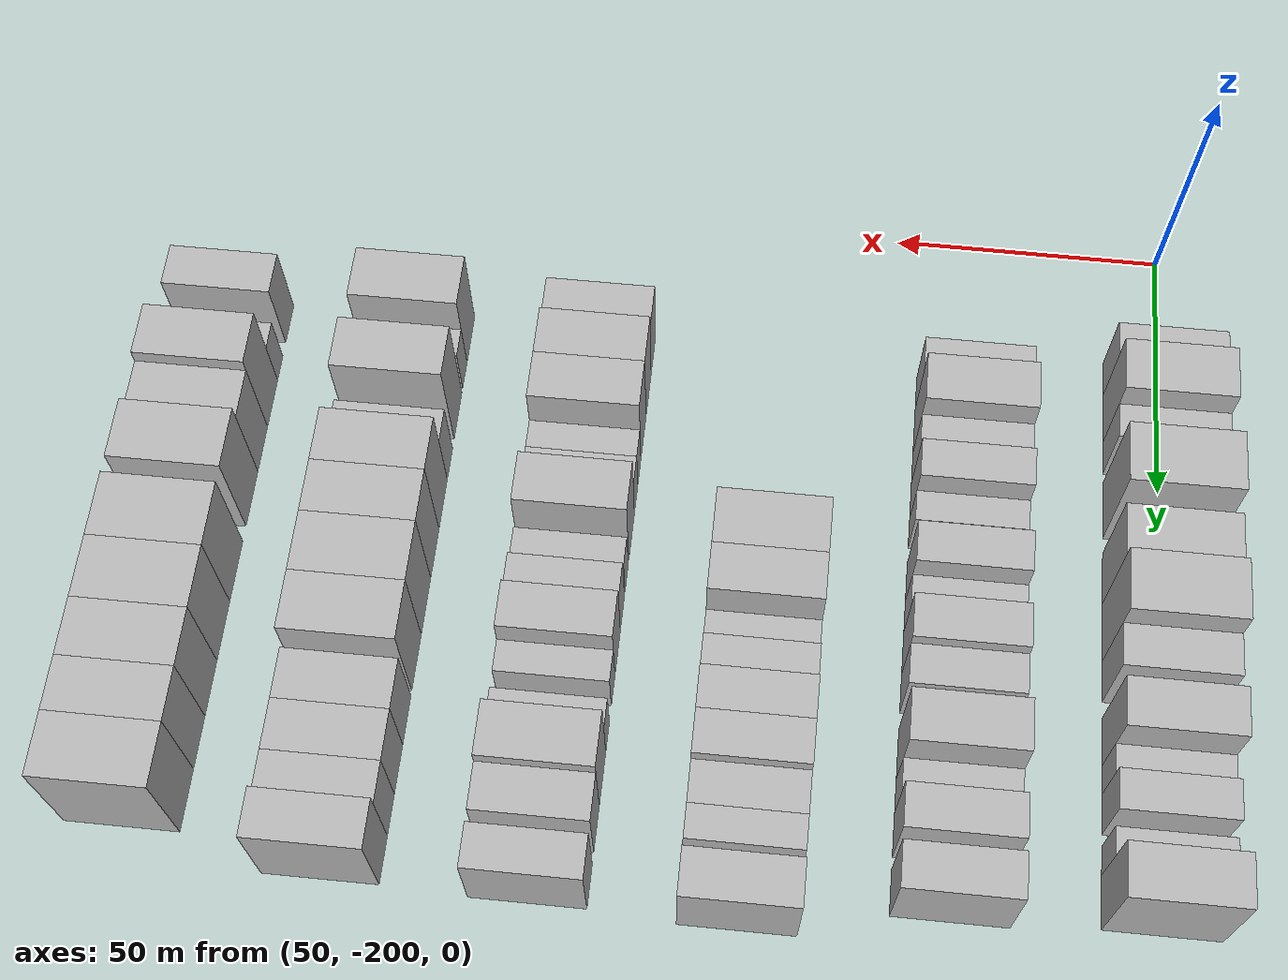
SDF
<sdf version="1.6">
 <world name="default">
  <model name="building_45">
   <static>1</static>
   <pose>50.0000 -173.1344 0 0.000000 0.000000 0.000000</pose>
   <link name="link">
    <pose>0 0 7.50 0 0 0</pose>
    <collision name="collision"><geometry><box><size>20.0000 6.9827 15.0000</size></box></geometry></collision>
    <visual name="visual">
     <cast_shadows>0</cast_shadows>
     <geometry><box><size>20.0000 6.9827 15.0000</size></box></geometry>
     <material>
      <script>
       <uri>model://HANNAS_wall/materials/scripts</uri>
       <uri>model://HANNAS_wall/materials/textures</uri>
       <name>vrc/HANNAS_wall</name>
      </script>
     </material>
    </visual>
   </link>
  </model>
  <model name="building_46">
   <static>1</static>
   <pose>50.0000 -164.6204 0 0.000000 0.000000 0.000000</pose>
   <link name="link">
    <pose>0 0 10.50 0 0 0</pose>
    <collision name="collision"><geometry><box><size>20.0000 10.0453 21.0000</size></box></geometry></collision>
    <visual name="visual">
     <cast_shadows>0</cast_shadows>
     <geometry><box><size>20.0000 10.0453 21.0000</size></box></geometry>
     <material>
      <script>
       <uri>model://HANNAS_wall/materials/scripts</uri>
       <uri>model://HANNAS_wall/materials/textures</uri>
       <name>vrc/HANNAS_wall</name>
      </script>
     </material>
    </visual>
   </link>
  </model>
  <model name="building_47">
   <static>1</static>
   <pose>50.0000 -156.3387 0 0.000000 0.000000 0.000000</pose>
   <link name="link">
    <pose>0 0 7.50 0 0 0</pose>
    <collision name="collision"><geometry><box><size>20.0000 6.5181 15.0000</size></box></geometry></collision>
    <visual name="visual">
     <cast_shadows>0</cast_shadows>
     <geometry><box><size>20.0000 6.5181 15.0000</size></box></geometry>
     <material>
      <script>
       <uri>model://HANNAS_wall/materials/scripts</uri>
       <uri>model://HANNAS_wall/materials/textures</uri>
       <name>vrc/HANNAS_wall</name>
      </script>
     </material>
    </visual>
   </link>
  </model>
  <model name="building_48">
   <static>1</static>
   <pose>50.0000 -145.4453 0 0.000000 0.000000 0.000000</pose>
   <link name="link">
    <pose>0 0 12.00 0 0 0</pose>
    <collision name="collision"><geometry><box><size>20.0000 11.2687 24.0000</size></box></geometry></collision>
    <visual name="visual">
     <cast_shadows>0</cast_shadows>
     <geometry><box><size>20.0000 11.2687 24.0000</size></box></geometry>
     <material>
      <script>
       <uri>model://HANNAS_wall/materials/scripts</uri>
       <uri>model://HANNAS_wall/materials/textures</uri>
       <name>vrc/HANNAS_wall</name>
      </script>
     </material>
    </visual>
   </link>
  </model>
  <model name="building_49">
   <static>1</static>
   <pose>50.0000 -131.9042 0 0.000000 0.000000 0.000000</pose>
   <link name="link">
    <pose>0 0 10.50 0 0 0</pose>
    <collision name="collision"><geometry><box><size>20.0000 9.8134 21.0000</size></box></geometry></collision>
    <visual name="visual">
     <cast_shadows>0</cast_shadows>
     <geometry><box><size>20.0000 9.8134 21.0000</size></box></geometry>
     <material>
      <script>
       <uri>model://HANNAS_wall/materials/scripts</uri>
       <uri>model://HANNAS_wall/materials/textures</uri>
       <name>vrc/HANNAS_wall</name>
      </script>
     </material>
    </visual>
   </link>
  </model>
  <model name="building_50">
   <static>1</static>
   <pose>50.0000 -121.4116 0 0.000000 0.000000 0.000000</pose>
   <link name="link">
    <pose>0 0 12.00 0 0 0</pose>
    <collision name="collision"><geometry><box><size>20.0000 11.1718 24.0000</size></box></geometry></collision>
    <visual name="visual">
     <cast_shadows>0</cast_shadows>
     <geometry><box><size>20.0000 11.1718 24.0000</size></box></geometry>
     <material>
      <script>
       <uri>model://HANNAS_wall/materials/scripts</uri>
       <uri>model://HANNAS_wall/materials/textures</uri>
       <name>vrc/HANNAS_wall</name>
      </script>
     </material>
    </visual>
   </link>
  </model>
  <model name="building_51">
   <static>1</static>
   <pose>50.0000 -112.0180 0 0.000000 0.000000 0.000000</pose>
   <link name="link">
    <pose>0 0 9.00 0 0 0</pose>
    <collision name="collision"><geometry><box><size>20.0000 7.6156 18.0000</size></box></geometry></collision>
    <visual name="visual">
     <cast_shadows>0</cast_shadows>
     <geometry><box><size>20.0000 7.6156 18.0000</size></box></geometry>
     <material>
      <script>
       <uri>model://HANNAS_wall/materials/scripts</uri>
       <uri>model://HANNAS_wall/materials/textures</uri>
       <name>vrc/HANNAS_wall</name>
      </script>
     </material>
    </visual>
   </link>
  </model>
  <model name="building_52">
   <static>1</static>
   <pose>50.0000 -100.8558 0 0.000000 0.000000 0.000000</pose>
   <link name="link">
    <pose>0 0 10.50 0 0 0</pose>
    <collision name="collision"><geometry><box><size>20.0000 8.7089 21.0000</size></box></geometry></collision>
    <visual name="visual">
     <cast_shadows>0</cast_shadows>
     <geometry><box><size>20.0000 8.7089 21.0000</size></box></geometry>
     <material>
      <script>
       <uri>model://HANNAS_wall/materials/scripts</uri>
       <uri>model://HANNAS_wall/materials/textures</uri>
       <name>vrc/HANNAS_wall</name>
      </script>
     </material>
    </visual>
   </link>
  </model>
  <model name="building_53">
   <static>1</static>
   <pose>50.0000 -93.9283 0 0.000000 0.000000 0.000000</pose>
   <link name="link">
    <pose>0 0 6.00 0 0 0</pose>
    <collision name="collision"><geometry><box><size>20.0000 5.1461 12.0000</size></box></geometry></collision>
    <visual name="visual">
     <cast_shadows>0</cast_shadows>
     <geometry><box><size>20.0000 5.1461 12.0000</size></box></geometry>
     <material>
      <script>
       <uri>model://HANNAS_wall/materials/scripts</uri>
       <uri>model://HANNAS_wall/materials/textures</uri>
       <name>vrc/HANNAS_wall</name>
      </script>
     </material>
    </visual>
   </link>
  </model>
  <model name="building_54">
   <static>1</static>
   <pose>50.0000 -87.8280 0 0.000000 0.000000 0.000000</pose>
   <link name="link">
    <pose>0 0 7.50 0 0 0</pose>
    <collision name="collision"><geometry><box><size>20.0000 7.0544 15.0000</size></box></geometry></collision>
    <visual name="visual">
     <cast_shadows>0</cast_shadows>
     <geometry><box><size>20.0000 7.0544 15.0000</size></box></geometry>
     <material>
      <script>
       <uri>model://HANNAS_wall/materials/scripts</uri>
       <uri>model://HANNAS_wall/materials/textures</uri>
       <name>vrc/HANNAS_wall</name>
      </script>
     </material>
    </visual>
   </link>
  </model>
  <model name="building_55">
   <static>1</static>
   <pose>50.0000 -79.8011 0 0.000000 0.000000 0.000000</pose>
   <link name="link">
    <pose>0 0 6.00 0 0 0</pose>
    <collision name="collision"><geometry><box><size>20.0000 4.9994 12.0000</size></box></geometry></collision>
    <visual name="visual">
     <cast_shadows>0</cast_shadows>
     <geometry><box><size>20.0000 4.9994 12.0000</size></box></geometry>
     <material>
      <script>
       <uri>model://HANNAS_wall/materials/scripts</uri>
       <uri>model://HANNAS_wall/materials/textures</uri>
       <name>vrc/HANNAS_wall</name>
      </script>
     </material>
    </visual>
   </link>
  </model>
  <model name="building_56">
   <static>1</static>
   <pose>50.0000 -72.6937 0 0.000000 0.000000 0.000000</pose>
   <link name="link">
    <pose>0 0 10.50 0 0 0</pose>
    <collision name="collision"><geometry><box><size>20.0000 9.2154 21.0000</size></box></geometry></collision>
    <visual name="visual">
     <cast_shadows>0</cast_shadows>
     <geometry><box><size>20.0000 9.2154 21.0000</size></box></geometry>
     <material>
      <script>
       <uri>model://HANNAS_wall/materials/scripts</uri>
       <uri>model://HANNAS_wall/materials/textures</uri>
       <name>vrc/HANNAS_wall</name>
      </script>
     </material>
    </visual>
   </link>
  </model>
  <model name="building_175">
   <static>1</static>
   <pose>85.0000 -166.5750 0 0.000000 0.000000 0.000000</pose>
   <link name="link">
    <pose>0 0 7.50 0 0 0</pose>
    <collision name="collision"><geometry><box><size>20.0000 6.8497 15.0000</size></box></geometry></collision>
    <visual name="visual">
     <cast_shadows>0</cast_shadows>
     <geometry><box><size>20.0000 6.8497 15.0000</size></box></geometry>
     <material>
      <script>
       <uri>model://HANNAS_wall/materials/scripts</uri>
       <uri>model://HANNAS_wall/materials/textures</uri>
       <name>vrc/HANNAS_wall</name>
      </script>
     </material>
    </visual>
   </link>
  </model>
  <model name="building_176">
   <static>1</static>
   <pose>85.0000 -158.5367 0 0.000000 0.000000 0.000000</pose>
   <link name="link">
    <pose>0 0 10.50 0 0 0</pose>
    <collision name="collision"><geometry><box><size>20.0000 9.2269 21.0000</size></box></geometry></collision>
    <visual name="visual">
     <cast_shadows>0</cast_shadows>
     <geometry><box><size>20.0000 9.2269 21.0000</size></box></geometry>
     <material>
      <script>
       <uri>model://HANNAS_wall/materials/scripts</uri>
       <uri>model://HANNAS_wall/materials/textures</uri>
       <name>vrc/HANNAS_wall</name>
      </script>
     </material>
    </visual>
   </link>
  </model>
  <model name="building_177">
   <static>1</static>
   <pose>85.0000 -150.6864 0 0.000000 0.000000 0.000000</pose>
   <link name="link">
    <pose>0 0 7.50 0 0 0</pose>
    <collision name="collision"><geometry><box><size>20.0000 6.4737 15.0000</size></box></geometry></collision>
    <visual name="visual">
     <cast_shadows>0</cast_shadows>
     <geometry><box><size>20.0000 6.4737 15.0000</size></box></geometry>
     <material>
      <script>
       <uri>model://HANNAS_wall/materials/scripts</uri>
       <uri>model://HANNAS_wall/materials/textures</uri>
       <name>vrc/HANNAS_wall</name>
      </script>
     </material>
    </visual>
   </link>
  </model>
  <model name="building_178">
   <static>1</static>
   <pose>85.0000 -143.8188 0 0.000000 0.000000 0.000000</pose>
   <link name="link">
    <pose>0 0 9.00 0 0 0</pose>
    <collision name="collision"><geometry><box><size>20.0000 7.2614 18.0000</size></box></geometry></collision>
    <visual name="visual">
     <cast_shadows>0</cast_shadows>
     <geometry><box><size>20.0000 7.2614 18.0000</size></box></geometry>
     <material>
      <script>
       <uri>model://HANNAS_wall/materials/scripts</uri>
       <uri>model://HANNAS_wall/materials/textures</uri>
       <name>vrc/HANNAS_wall</name>
      </script>
     </material>
    </visual>
   </link>
  </model>
  <model name="building_179">
   <static>1</static>
   <pose>85.0000 -137.3161 0 0.000000 0.000000 0.000000</pose>
   <link name="link">
    <pose>0 0 6.00 0 0 0</pose>
    <collision name="collision"><geometry><box><size>20.0000 5.7441 12.0000</size></box></geometry></collision>
    <visual name="visual">
     <cast_shadows>0</cast_shadows>
     <geometry><box><size>20.0000 5.7441 12.0000</size></box></geometry>
     <material>
      <script>
       <uri>model://HANNAS_wall/materials/scripts</uri>
       <uri>model://HANNAS_wall/materials/textures</uri>
       <name>vrc/HANNAS_wall</name>
      </script>
     </material>
    </visual>
   </link>
  </model>
  <model name="building_180">
   <static>1</static>
   <pose>85.0000 -127.6485 0 0.000000 0.000000 0.000000</pose>
   <link name="link">
    <pose>0 0 9.00 0 0 0</pose>
    <collision name="collision"><geometry><box><size>20.0000 7.5910 18.0000</size></box></geometry></collision>
    <visual name="visual">
     <cast_shadows>0</cast_shadows>
     <geometry><box><size>20.0000 7.5910 18.0000</size></box></geometry>
     <material>
      <script>
       <uri>model://HANNAS_wall/materials/scripts</uri>
       <uri>model://HANNAS_wall/materials/textures</uri>
       <name>vrc/HANNAS_wall</name>
      </script>
     </material>
    </visual>
   </link>
  </model>
  <model name="building_181">
   <static>1</static>
   <pose>85.0000 -120.8542 0 0.000000 0.000000 0.000000</pose>
   <link name="link">
    <pose>0 0 6.00 0 0 0</pose>
    <collision name="collision"><geometry><box><size>20.0000 5.9977 12.0000</size></box></geometry></collision>
    <visual name="visual">
     <cast_shadows>0</cast_shadows>
     <geometry><box><size>20.0000 5.9977 12.0000</size></box></geometry>
     <material>
      <script>
       <uri>model://HANNAS_wall/materials/scripts</uri>
       <uri>model://HANNAS_wall/materials/textures</uri>
       <name>vrc/HANNAS_wall</name>
      </script>
     </material>
    </visual>
   </link>
  </model>
  <model name="building_182">
   <static>1</static>
   <pose>85.0000 -113.8554 0 0.000000 0.000000 0.000000</pose>
   <link name="link">
    <pose>0 0 9.00 0 0 0</pose>
    <collision name="collision"><geometry><box><size>20.0000 7.9998 18.0000</size></box></geometry></collision>
    <visual name="visual">
     <cast_shadows>0</cast_shadows>
     <geometry><box><size>20.0000 7.9998 18.0000</size></box></geometry>
     <material>
      <script>
       <uri>model://HANNAS_wall/materials/scripts</uri>
       <uri>model://HANNAS_wall/materials/textures</uri>
       <name>vrc/HANNAS_wall</name>
      </script>
     </material>
    </visual>
   </link>
  </model>
  <model name="building_183">
   <static>1</static>
   <pose>85.0000 -106.2631 0 0.000000 0.000000 0.000000</pose>
   <link name="link">
    <pose>0 0 7.50 0 0 0</pose>
    <collision name="collision"><geometry><box><size>20.0000 7.1848 15.0000</size></box></geometry></collision>
    <visual name="visual">
     <cast_shadows>0</cast_shadows>
     <geometry><box><size>20.0000 7.1848 15.0000</size></box></geometry>
     <material>
      <script>
       <uri>model://HANNAS_wall/materials/scripts</uri>
       <uri>model://HANNAS_wall/materials/textures</uri>
       <name>vrc/HANNAS_wall</name>
      </script>
     </material>
    </visual>
   </link>
  </model>
  <model name="building_184">
   <static>1</static>
   <pose>85.0000 -95.1014 0 0.000000 0.000000 0.000000</pose>
   <link name="link">
    <pose>0 0 10.50 0 0 0</pose>
    <collision name="collision"><geometry><box><size>20.0000 9.1386 21.0000</size></box></geometry></collision>
    <visual name="visual">
     <cast_shadows>0</cast_shadows>
     <geometry><box><size>20.0000 9.1386 21.0000</size></box></geometry>
     <material>
      <script>
       <uri>model://HANNAS_wall/materials/scripts</uri>
       <uri>model://HANNAS_wall/materials/textures</uri>
       <name>vrc/HANNAS_wall</name>
      </script>
     </material>
    </visual>
   </link>
  </model>
  <model name="building_185">
   <static>1</static>
   <pose>85.0000 -87.5494 0 0.000000 0.000000 0.000000</pose>
   <link name="link">
    <pose>0 0 6.00 0 0 0</pose>
    <collision name="collision"><geometry><box><size>20.0000 5.9654 12.0000</size></box></geometry></collision>
    <visual name="visual">
     <cast_shadows>0</cast_shadows>
     <geometry><box><size>20.0000 5.9654 12.0000</size></box></geometry>
     <material>
      <script>
       <uri>model://HANNAS_wall/materials/scripts</uri>
       <uri>model://HANNAS_wall/materials/textures</uri>
       <name>vrc/HANNAS_wall</name>
      </script>
     </material>
    </visual>
   </link>
  </model>
  <model name="building_186">
   <static>1</static>
   <pose>85.0000 -80.7214 0 0.000000 0.000000 0.000000</pose>
   <link name="link">
    <pose>0 0 9.00 0 0 0</pose>
    <collision name="collision"><geometry><box><size>20.0000 7.6907 18.0000</size></box></geometry></collision>
    <visual name="visual">
     <cast_shadows>0</cast_shadows>
     <geometry><box><size>20.0000 7.6907 18.0000</size></box></geometry>
     <material>
      <script>
       <uri>model://HANNAS_wall/materials/scripts</uri>
       <uri>model://HANNAS_wall/materials/textures</uri>
       <name>vrc/HANNAS_wall</name>
      </script>
     </material>
    </visual>
   </link>
  </model>
  <model name="building_187">
   <static>1</static>
   <pose>85.0000 -70.8820 0 0.000000 0.000000 0.000000</pose>
   <link name="link">
    <pose>0 0 9.00 0 0 0</pose>
    <collision name="collision"><geometry><box><size>20.0000 7.9880 18.0000</size></box></geometry></collision>
    <visual name="visual">
     <cast_shadows>0</cast_shadows>
     <geometry><box><size>20.0000 7.9880 18.0000</size></box></geometry>
     <material>
      <script>
       <uri>model://HANNAS_wall/materials/scripts</uri>
       <uri>model://HANNAS_wall/materials/textures</uri>
       <name>vrc/HANNAS_wall</name>
      </script>
     </material>
    </visual>
   </link>
  </model>
  <model name="building_301">
   <static>1</static>
   <pose>120.0000 -127.6379 0 0.000000 0.000000 0.000000</pose>
   <link name="link">
    <pose>0 0 10.50 0 0 0</pose>
    <collision name="collision"><geometry><box><size>20.0000 10.3946 21.0000</size></box></geometry></collision>
    <visual name="visual">
     <cast_shadows>0</cast_shadows>
     <geometry><box><size>20.0000 10.3946 21.0000</size></box></geometry>
     <material>
      <script>
       <uri>model://HANNAS_wall/materials/scripts</uri>
       <uri>model://HANNAS_wall/materials/textures</uri>
       <name>vrc/HANNAS_wall</name>
      </script>
     </material>
    </visual>
   </link>
  </model>
  <model name="building_302">
   <static>1</static>
   <pose>120.0000 -118.1005 0 0.000000 0.000000 0.000000</pose>
   <link name="link">
    <pose>0 0 10.50 0 0 0</pose>
    <collision name="collision"><geometry><box><size>20.0000 8.6802 21.0000</size></box></geometry></collision>
    <visual name="visual">
     <cast_shadows>0</cast_shadows>
     <geometry><box><size>20.0000 8.6802 21.0000</size></box></geometry>
     <material>
      <script>
       <uri>model://HANNAS_wall/materials/scripts</uri>
       <uri>model://HANNAS_wall/materials/textures</uri>
       <name>vrc/HANNAS_wall</name>
      </script>
     </material>
    </visual>
   </link>
  </model>
  <model name="building_303">
   <static>1</static>
   <pose>120.0000 -110.9812 0 0.000000 0.000000 0.000000</pose>
   <link name="link">
    <pose>0 0 6.00 0 0 0</pose>
    <collision name="collision"><geometry><box><size>20.0000 5.5582 12.0000</size></box></geometry></collision>
    <visual name="visual">
     <cast_shadows>0</cast_shadows>
     <geometry><box><size>20.0000 5.5582 12.0000</size></box></geometry>
     <material>
      <script>
       <uri>model://HANNAS_wall/materials/scripts</uri>
       <uri>model://HANNAS_wall/materials/textures</uri>
       <name>vrc/HANNAS_wall</name>
      </script>
     </material>
    </visual>
   </link>
  </model>
  <model name="building_304">
   <static>1</static>
   <pose>120.0000 -104.8075 0 0.000000 0.000000 0.000000</pose>
   <link name="link">
    <pose>0 0 7.50 0 0 0</pose>
    <collision name="collision"><geometry><box><size>20.0000 6.7891 15.0000</size></box></geometry></collision>
    <visual name="visual">
     <cast_shadows>0</cast_shadows>
     <geometry><box><size>20.0000 6.7891 15.0000</size></box></geometry>
     <material>
      <script>
       <uri>model://HANNAS_wall/materials/scripts</uri>
       <uri>model://HANNAS_wall/materials/textures</uri>
       <name>vrc/HANNAS_wall</name>
      </script>
     </material>
    </visual>
   </link>
  </model>
  <model name="building_305">
   <static>1</static>
   <pose>120.0000 -97.5523 0 0.000000 0.000000 0.000000</pose>
   <link name="link">
    <pose>0 0 9.00 0 0 0</pose>
    <collision name="collision"><geometry><box><size>20.0000 7.7213 18.0000</size></box></geometry></collision>
    <visual name="visual">
     <cast_shadows>0</cast_shadows>
     <geometry><box><size>20.0000 7.7213 18.0000</size></box></geometry>
     <material>
      <script>
       <uri>model://HANNAS_wall/materials/scripts</uri>
       <uri>model://HANNAS_wall/materials/textures</uri>
       <name>vrc/HANNAS_wall</name>
      </script>
     </material>
    </visual>
   </link>
  </model>
  <model name="building_306">
   <static>1</static>
   <pose>120.0000 -89.7532 0 0.000000 0.000000 0.000000</pose>
   <link name="link">
    <pose>0 0 9.00 0 0 0</pose>
    <collision name="collision"><geometry><box><size>20.0000 7.8770 18.0000</size></box></geometry></collision>
    <visual name="visual">
     <cast_shadows>0</cast_shadows>
     <geometry><box><size>20.0000 7.8770 18.0000</size></box></geometry>
     <material>
      <script>
       <uri>model://HANNAS_wall/materials/scripts</uri>
       <uri>model://HANNAS_wall/materials/textures</uri>
       <name>vrc/HANNAS_wall</name>
      </script>
     </material>
    </visual>
   </link>
  </model>
  <model name="building_307">
   <static>1</static>
   <pose>120.0000 -82.0815 0 0.000000 0.000000 0.000000</pose>
   <link name="link">
    <pose>0 0 7.50 0 0 0</pose>
    <collision name="collision"><geometry><box><size>20.0000 7.4664 15.0000</size></box></geometry></collision>
    <visual name="visual">
     <cast_shadows>0</cast_shadows>
     <geometry><box><size>20.0000 7.4664 15.0000</size></box></geometry>
     <material>
      <script>
       <uri>model://HANNAS_wall/materials/scripts</uri>
       <uri>model://HANNAS_wall/materials/textures</uri>
       <name>vrc/HANNAS_wall</name>
      </script>
     </material>
    </visual>
   </link>
  </model>
  <model name="building_308">
   <static>1</static>
   <pose>120.0000 -75.3346 0 0.000000 0.000000 0.000000</pose>
   <link name="link">
    <pose>0 0 7.50 0 0 0</pose>
    <collision name="collision"><geometry><box><size>20.0000 6.0274 15.0000</size></box></geometry></collision>
    <visual name="visual">
     <cast_shadows>0</cast_shadows>
     <geometry><box><size>20.0000 6.0274 15.0000</size></box></geometry>
     <material>
      <script>
       <uri>model://HANNAS_wall/materials/scripts</uri>
       <uri>model://HANNAS_wall/materials/textures</uri>
       <name>vrc/HANNAS_wall</name>
      </script>
     </material>
    </visual>
   </link>
  </model>
  <model name="building_309">
   <static>1</static>
   <pose>120.0000 -66.1623 0 0.000000 0.000000 0.000000</pose>
   <link name="link">
    <pose>0 0 9.00 0 0 0</pose>
    <collision name="collision"><geometry><box><size>20.0000 8.3171 18.0000</size></box></geometry></collision>
    <visual name="visual">
     <cast_shadows>0</cast_shadows>
     <geometry><box><size>20.0000 8.3171 18.0000</size></box></geometry>
     <material>
      <script>
       <uri>model://HANNAS_wall/materials/scripts</uri>
       <uri>model://HANNAS_wall/materials/textures</uri>
       <name>vrc/HANNAS_wall</name>
      </script>
     </material>
    </visual>
   </link>
  </model>
  <model name="building_424">
   <static>1</static>
   <pose>155.0000 -169.7440 0 0.000000 0.000000 0.000000</pose>
   <link name="link">
    <pose>0 0 9.00 0 0 0</pose>
    <collision name="collision"><geometry><box><size>20.0000 8.2928 18.0000</size></box></geometry></collision>
    <visual name="visual">
     <cast_shadows>0</cast_shadows>
     <geometry><box><size>20.0000 8.2928 18.0000</size></box></geometry>
     <material>
      <script>
       <uri>model://HANNAS_wall/materials/scripts</uri>
       <uri>model://HANNAS_wall/materials/textures</uri>
       <name>vrc/HANNAS_wall</name>
      </script>
     </material>
    </visual>
   </link>
  </model>
  <model name="building_425">
   <static>1</static>
   <pose>155.0000 -160.9993 0 0.000000 0.000000 0.000000</pose>
   <link name="link">
    <pose>0 0 10.50 0 0 0</pose>
    <collision name="collision"><geometry><box><size>20.0000 9.1964 21.0000</size></box></geometry></collision>
    <visual name="visual">
     <cast_shadows>0</cast_shadows>
     <geometry><box><size>20.0000 9.1964 21.0000</size></box></geometry>
     <material>
      <script>
       <uri>model://HANNAS_wall/materials/scripts</uri>
       <uri>model://HANNAS_wall/materials/textures</uri>
       <name>vrc/HANNAS_wall</name>
      </script>
     </material>
    </visual>
   </link>
  </model>
  <model name="building_426">
   <static>1</static>
   <pose>155.0000 -151.8614 0 0.000000 0.000000 0.000000</pose>
   <link name="link">
    <pose>0 0 10.50 0 0 0</pose>
    <collision name="collision"><geometry><box><size>20.0000 9.0793 21.0000</size></box></geometry></collision>
    <visual name="visual">
     <cast_shadows>0</cast_shadows>
     <geometry><box><size>20.0000 9.0793 21.0000</size></box></geometry>
     <material>
      <script>
       <uri>model://HANNAS_wall/materials/scripts</uri>
       <uri>model://HANNAS_wall/materials/textures</uri>
       <name>vrc/HANNAS_wall</name>
      </script>
     </material>
    </visual>
   </link>
  </model>
  <model name="building_427">
   <static>1</static>
   <pose>155.0000 -144.6300 0 0.000000 0.000000 0.000000</pose>
   <link name="link">
    <pose>0 0 6.00 0 0 0</pose>
    <collision name="collision"><geometry><box><size>20.0000 5.3836 12.0000</size></box></geometry></collision>
    <visual name="visual">
     <cast_shadows>0</cast_shadows>
     <geometry><box><size>20.0000 5.3836 12.0000</size></box></geometry>
     <material>
      <script>
       <uri>model://HANNAS_wall/materials/scripts</uri>
       <uri>model://HANNAS_wall/materials/textures</uri>
       <name>vrc/HANNAS_wall</name>
      </script>
     </material>
    </visual>
   </link>
  </model>
  <model name="building_428">
   <static>1</static>
   <pose>155.0000 -139.0738 0 0.000000 0.000000 0.000000</pose>
   <link name="link">
    <pose>0 0 6.00 0 0 0</pose>
    <collision name="collision"><geometry><box><size>20.0000 5.7287 12.0000</size></box></geometry></collision>
    <visual name="visual">
     <cast_shadows>0</cast_shadows>
     <geometry><box><size>20.0000 5.7287 12.0000</size></box></geometry>
     <material>
      <script>
       <uri>model://HANNAS_wall/materials/scripts</uri>
       <uri>model://HANNAS_wall/materials/textures</uri>
       <name>vrc/HANNAS_wall</name>
      </script>
     </material>
    </visual>
   </link>
  </model>
  <model name="building_429">
   <static>1</static>
   <pose>155.0000 -131.5711 0 0.000000 0.000000 0.000000</pose>
   <link name="link">
    <pose>0 0 10.50 0 0 0</pose>
    <collision name="collision"><geometry><box><size>20.0000 9.2766 21.0000</size></box></geometry></collision>
    <visual name="visual">
     <cast_shadows>0</cast_shadows>
     <geometry><box><size>20.0000 9.2766 21.0000</size></box></geometry>
     <material>
      <script>
       <uri>model://HANNAS_wall/materials/scripts</uri>
       <uri>model://HANNAS_wall/materials/textures</uri>
       <name>vrc/HANNAS_wall</name>
      </script>
     </material>
    </visual>
   </link>
  </model>
  <model name="building_430">
   <static>1</static>
   <pose>155.0000 -123.2863 0 0.000000 0.000000 0.000000</pose>
   <link name="link">
    <pose>0 0 6.00 0 0 0</pose>
    <collision name="collision"><geometry><box><size>20.0000 5.2931 12.0000</size></box></geometry></collision>
    <visual name="visual">
     <cast_shadows>0</cast_shadows>
     <geometry><box><size>20.0000 5.2931 12.0000</size></box></geometry>
     <material>
      <script>
       <uri>model://HANNAS_wall/materials/scripts</uri>
       <uri>model://HANNAS_wall/materials/textures</uri>
       <name>vrc/HANNAS_wall</name>
      </script>
     </material>
    </visual>
   </link>
  </model>
  <model name="building_431">
   <static>1</static>
   <pose>155.0000 -116.3697 0 0.000000 0.000000 0.000000</pose>
   <link name="link">
    <pose>0 0 7.50 0 0 0</pose>
    <collision name="collision"><geometry><box><size>20.0000 6.5401 15.0000</size></box></geometry></collision>
    <visual name="visual">
     <cast_shadows>0</cast_shadows>
     <geometry><box><size>20.0000 6.5401 15.0000</size></box></geometry>
     <material>
      <script>
       <uri>model://HANNAS_wall/materials/scripts</uri>
       <uri>model://HANNAS_wall/materials/textures</uri>
       <name>vrc/HANNAS_wall</name>
      </script>
     </material>
    </visual>
   </link>
  </model>
  <model name="building_432">
   <static>1</static>
   <pose>155.0000 -108.8888 0 0.000000 0.000000 0.000000</pose>
   <link name="link">
    <pose>0 0 9.00 0 0 0</pose>
    <collision name="collision"><geometry><box><size>20.0000 8.4217 18.0000</size></box></geometry></collision>
    <visual name="visual">
     <cast_shadows>0</cast_shadows>
     <geometry><box><size>20.0000 8.4217 18.0000</size></box></geometry>
     <material>
      <script>
       <uri>model://HANNAS_wall/materials/scripts</uri>
       <uri>model://HANNAS_wall/materials/textures</uri>
       <name>vrc/HANNAS_wall</name>
      </script>
     </material>
    </visual>
   </link>
  </model>
  <model name="building_433">
   <static>1</static>
   <pose>155.0000 -101.8105 0 0.000000 0.000000 0.000000</pose>
   <link name="link">
    <pose>0 0 6.00 0 0 0</pose>
    <collision name="collision"><geometry><box><size>20.0000 5.7349 12.0000</size></box></geometry></collision>
    <visual name="visual">
     <cast_shadows>0</cast_shadows>
     <geometry><box><size>20.0000 5.7349 12.0000</size></box></geometry>
     <material>
      <script>
       <uri>model://HANNAS_wall/materials/scripts</uri>
       <uri>model://HANNAS_wall/materials/textures</uri>
       <name>vrc/HANNAS_wall</name>
      </script>
     </material>
    </visual>
   </link>
  </model>
  <model name="building_434">
   <static>1</static>
   <pose>155.0000 -93.2297 0 0.000000 0.000000 0.000000</pose>
   <link name="link">
    <pose>0 0 6.00 0 0 0</pose>
    <collision name="collision"><geometry><box><size>20.0000 5.4267 12.0000</size></box></geometry></collision>
    <visual name="visual">
     <cast_shadows>0</cast_shadows>
     <geometry><box><size>20.0000 5.4267 12.0000</size></box></geometry>
     <material>
      <script>
       <uri>model://HANNAS_wall/materials/scripts</uri>
       <uri>model://HANNAS_wall/materials/textures</uri>
       <name>vrc/HANNAS_wall</name>
      </script>
     </material>
    </visual>
   </link>
  </model>
  <model name="building_435">
   <static>1</static>
   <pose>155.0000 -85.6830 0 0.000000 0.000000 0.000000</pose>
   <link name="link">
    <pose>0 0 10.50 0 0 0</pose>
    <collision name="collision"><geometry><box><size>20.0000 9.6667 21.0000</size></box></geometry></collision>
    <visual name="visual">
     <cast_shadows>0</cast_shadows>
     <geometry><box><size>20.0000 9.6667 21.0000</size></box></geometry>
     <material>
      <script>
       <uri>model://HANNAS_wall/materials/scripts</uri>
       <uri>model://HANNAS_wall/materials/textures</uri>
       <name>vrc/HANNAS_wall</name>
      </script>
     </material>
    </visual>
   </link>
  </model>
  <model name="building_436">
   <static>1</static>
   <pose>155.0000 -76.7778 0 0.000000 0.000000 0.000000</pose>
   <link name="link">
    <pose>0 0 9.00 0 0 0</pose>
    <collision name="collision"><geometry><box><size>20.0000 8.1437 18.0000</size></box></geometry></collision>
    <visual name="visual">
     <cast_shadows>0</cast_shadows>
     <geometry><box><size>20.0000 8.1437 18.0000</size></box></geometry>
     <material>
      <script>
       <uri>model://HANNAS_wall/materials/scripts</uri>
       <uri>model://HANNAS_wall/materials/textures</uri>
       <name>vrc/HANNAS_wall</name>
      </script>
     </material>
    </visual>
   </link>
  </model>
  <model name="building_437">
   <static>1</static>
   <pose>155.0000 -66.8886 0 0.000000 0.000000 0.000000</pose>
   <link name="link">
    <pose>0 0 9.00 0 0 0</pose>
    <collision name="collision"><geometry><box><size>20.0000 7.6347 18.0000</size></box></geometry></collision>
    <visual name="visual">
     <cast_shadows>0</cast_shadows>
     <geometry><box><size>20.0000 7.6347 18.0000</size></box></geometry>
     <material>
      <script>
       <uri>model://HANNAS_wall/materials/scripts</uri>
       <uri>model://HANNAS_wall/materials/textures</uri>
       <name>vrc/HANNAS_wall</name>
      </script>
     </material>
    </visual>
   </link>
  </model>
  <model name="building_558">
   <static>1</static>
   <pose>190.0000 -169.8758 0 0.000000 0.000000 0.000000</pose>
   <link name="link">
    <pose>0 0 10.50 0 0 0</pose>
    <collision name="collision"><geometry><box><size>20.0000 10.0509 21.0000</size></box></geometry></collision>
    <visual name="visual">
     <cast_shadows>0</cast_shadows>
     <geometry><box><size>20.0000 10.0509 21.0000</size></box></geometry>
     <material>
      <script>
       <uri>model://HANNAS_wall/materials/scripts</uri>
       <uri>model://HANNAS_wall/materials/textures</uri>
       <name>vrc/HANNAS_wall</name>
      </script>
     </material>
    </visual>
   </link>
  </model>
  <model name="building_559">
   <static>1</static>
   <pose>190.0000 -162.0205 0 0.000000 0.000000 0.000000</pose>
   <link name="link">
    <pose>0 0 6.00 0 0 0</pose>
    <collision name="collision"><geometry><box><size>20.0000 5.6599 12.0000</size></box></geometry></collision>
    <visual name="visual">
     <cast_shadows>0</cast_shadows>
     <geometry><box><size>20.0000 5.6599 12.0000</size></box></geometry>
     <material>
      <script>
       <uri>model://HANNAS_wall/materials/scripts</uri>
       <uri>model://HANNAS_wall/materials/textures</uri>
       <name>vrc/HANNAS_wall</name>
      </script>
     </material>
    </visual>
   </link>
  </model>
  <model name="building_560">
   <static>1</static>
   <pose>190.0000 -153.2542 0 0.000000 0.000000 0.000000</pose>
   <link name="link">
    <pose>0 0 12.00 0 0 0</pose>
    <collision name="collision"><geometry><box><size>20.0000 9.8726 24.0000</size></box></geometry></collision>
    <visual name="visual">
     <cast_shadows>0</cast_shadows>
     <geometry><box><size>20.0000 9.8726 24.0000</size></box></geometry>
     <material>
      <script>
       <uri>model://HANNAS_wall/materials/scripts</uri>
       <uri>model://HANNAS_wall/materials/textures</uri>
       <name>vrc/HANNAS_wall</name>
      </script>
     </material>
    </visual>
   </link>
  </model>
  <model name="building_561">
   <static>1</static>
   <pose>190.0000 -143.0731 0 0.000000 0.000000 0.000000</pose>
   <link name="link">
    <pose>0 0 7.50 0 0 0</pose>
    <collision name="collision"><geometry><box><size>20.0000 6.4895 15.0000</size></box></geometry></collision>
    <visual name="visual">
     <cast_shadows>0</cast_shadows>
     <geometry><box><size>20.0000 6.4895 15.0000</size></box></geometry>
     <material>
      <script>
       <uri>model://HANNAS_wall/materials/scripts</uri>
       <uri>model://HANNAS_wall/materials/textures</uri>
       <name>vrc/HANNAS_wall</name>
      </script>
     </material>
    </visual>
   </link>
  </model>
  <model name="building_562">
   <static>1</static>
   <pose>190.0000 -134.7621 0 0.000000 0.000000 0.000000</pose>
   <link name="link">
    <pose>0 0 12.00 0 0 0</pose>
    <collision name="collision"><geometry><box><size>20.0000 10.1324 24.0000</size></box></geometry></collision>
    <visual name="visual">
     <cast_shadows>0</cast_shadows>
     <geometry><box><size>20.0000 10.1324 24.0000</size></box></geometry>
     <material>
      <script>
       <uri>model://HANNAS_wall/materials/scripts</uri>
       <uri>model://HANNAS_wall/materials/textures</uri>
       <name>vrc/HANNAS_wall</name>
      </script>
     </material>
    </visual>
   </link>
  </model>
  <model name="building_563">
   <static>1</static>
   <pose>190.0000 -124.8075 0 0.000000 0.000000 0.000000</pose>
   <link name="link">
    <pose>0 0 12.00 0 0 0</pose>
    <collision name="collision"><geometry><box><size>20.0000 9.7768 24.0000</size></box></geometry></collision>
    <visual name="visual">
     <cast_shadows>0</cast_shadows>
     <geometry><box><size>20.0000 9.7768 24.0000</size></box></geometry>
     <material>
      <script>
       <uri>model://HANNAS_wall/materials/scripts</uri>
       <uri>model://HANNAS_wall/materials/textures</uri>
       <name>vrc/HANNAS_wall</name>
      </script>
     </material>
    </visual>
   </link>
  </model>
  <model name="building_564">
   <static>1</static>
   <pose>190.0000 -114.4148 0 0.000000 0.000000 0.000000</pose>
   <link name="link">
    <pose>0 0 12.00 0 0 0</pose>
    <collision name="collision"><geometry><box><size>20.0000 11.0087 24.0000</size></box></geometry></collision>
    <visual name="visual">
     <cast_shadows>0</cast_shadows>
     <geometry><box><size>20.0000 11.0087 24.0000</size></box></geometry>
     <material>
      <script>
       <uri>model://HANNAS_wall/materials/scripts</uri>
       <uri>model://HANNAS_wall/materials/textures</uri>
       <name>vrc/HANNAS_wall</name>
      </script>
     </material>
    </visual>
   </link>
  </model>
  <model name="building_565">
   <static>1</static>
   <pose>190.0000 -103.6027 0 0.000000 0.000000 0.000000</pose>
   <link name="link">
    <pose>0 0 12.00 0 0 0</pose>
    <collision name="collision"><geometry><box><size>20.0000 10.6154 24.0000</size></box></geometry></collision>
    <visual name="visual">
     <cast_shadows>0</cast_shadows>
     <geometry><box><size>20.0000 10.6154 24.0000</size></box></geometry>
     <material>
      <script>
       <uri>model://HANNAS_wall/materials/scripts</uri>
       <uri>model://HANNAS_wall/materials/textures</uri>
       <name>vrc/HANNAS_wall</name>
      </script>
     </material>
    </visual>
   </link>
  </model>
  <model name="building_566">
   <static>1</static>
   <pose>190.0000 -92.8199 0 0.000000 0.000000 0.000000</pose>
   <link name="link">
    <pose>0 0 9.00 0 0 0</pose>
    <collision name="collision"><geometry><box><size>20.0000 8.9500 18.0000</size></box></geometry></collision>
    <visual name="visual">
     <cast_shadows>0</cast_shadows>
     <geometry><box><size>20.0000 8.9500 18.0000</size></box></geometry>
     <material>
      <script>
       <uri>model://HANNAS_wall/materials/scripts</uri>
       <uri>model://HANNAS_wall/materials/textures</uri>
       <name>vrc/HANNAS_wall</name>
      </script>
     </material>
    </visual>
   </link>
  </model>
  <model name="building_567">
   <static>1</static>
   <pose>190.0000 -83.8974 0 0.000000 0.000000 0.000000</pose>
   <link name="link">
    <pose>0 0 9.00 0 0 0</pose>
    <collision name="collision"><geometry><box><size>20.0000 8.8950 18.0000</size></box></geometry></collision>
    <visual name="visual">
     <cast_shadows>0</cast_shadows>
     <geometry><box><size>20.0000 8.8950 18.0000</size></box></geometry>
     <material>
      <script>
       <uri>model://HANNAS_wall/materials/scripts</uri>
       <uri>model://HANNAS_wall/materials/textures</uri>
       <name>vrc/HANNAS_wall</name>
      </script>
     </material>
    </visual>
   </link>
  </model>
  <model name="building_568">
   <static>1</static>
   <pose>190.0000 -75.7751 0 0.000000 0.000000 0.000000</pose>
   <link name="link">
    <pose>0 0 9.00 0 0 0</pose>
    <collision name="collision"><geometry><box><size>20.0000 7.3497 18.0000</size></box></geometry></collision>
    <visual name="visual">
     <cast_shadows>0</cast_shadows>
     <geometry><box><size>20.0000 7.3497 18.0000</size></box></geometry>
     <material>
      <script>
       <uri>model://HANNAS_wall/materials/scripts</uri>
       <uri>model://HANNAS_wall/materials/textures</uri>
       <name>vrc/HANNAS_wall</name>
      </script>
     </material>
    </visual>
   </link>
  </model>
  <model name="building_569">
   <static>1</static>
   <pose>190.0000 -67.8880 0 0.000000 0.000000 0.000000</pose>
   <link name="link">
    <pose>0 0 10.50 0 0 0</pose>
    <collision name="collision"><geometry><box><size>20.0000 8.4245 21.0000</size></box></geometry></collision>
    <visual name="visual">
     <cast_shadows>0</cast_shadows>
     <geometry><box><size>20.0000 8.4245 21.0000</size></box></geometry>
     <material>
      <script>
       <uri>model://HANNAS_wall/materials/scripts</uri>
       <uri>model://HANNAS_wall/materials/textures</uri>
       <name>vrc/HANNAS_wall</name>
      </script>
     </material>
    </visual>
   </link>
  </model>
  <model name="building_685">
   <static>1</static>
   <pose>225.0000 -169.8168 0 0.000000 0.000000 0.000000</pose>
   <link name="link">
    <pose>0 0 9.00 0 0 0</pose>
    <collision name="collision"><geometry><box><size>20.0000 8.2047 18.0000</size></box></geometry></collision>
    <visual name="visual">
     <cast_shadows>0</cast_shadows>
     <geometry><box><size>20.0000 8.2047 18.0000</size></box></geometry>
     <material>
      <script>
       <uri>model://HANNAS_wall/materials/scripts</uri>
       <uri>model://HANNAS_wall/materials/textures</uri>
       <name>vrc/HANNAS_wall</name>
      </script>
     </material>
    </visual>
   </link>
  </model>
  <model name="building_686">
   <static>1</static>
   <pose>225.0000 -160.0517 0 0.000000 0.000000 0.000000</pose>
   <link name="link">
    <pose>0 0 6.00 0 0 0</pose>
    <collision name="collision"><geometry><box><size>20.0000 5.3255 12.0000</size></box></geometry></collision>
    <visual name="visual">
     <cast_shadows>0</cast_shadows>
     <geometry><box><size>20.0000 5.3255 12.0000</size></box></geometry>
     <material>
      <script>
       <uri>model://HANNAS_wall/materials/scripts</uri>
       <uri>model://HANNAS_wall/materials/textures</uri>
       <name>vrc/HANNAS_wall</name>
      </script>
     </material>
    </visual>
   </link>
  </model>
  <model name="building_687">
   <static>1</static>
   <pose>225.0000 -152.3925 0 0.000000 0.000000 0.000000</pose>
   <link name="link">
    <pose>0 0 12.00 0 0 0</pose>
    <collision name="collision"><geometry><box><size>20.0000 9.9927 24.0000</size></box></geometry></collision>
    <visual name="visual">
     <cast_shadows>0</cast_shadows>
     <geometry><box><size>20.0000 9.9927 24.0000</size></box></geometry>
     <material>
      <script>
       <uri>model://HANNAS_wall/materials/scripts</uri>
       <uri>model://HANNAS_wall/materials/textures</uri>
       <name>vrc/HANNAS_wall</name>
      </script>
     </material>
    </visual>
   </link>
  </model>
  <model name="building_688">
   <static>1</static>
   <pose>225.0000 -142.7121 0 0.000000 0.000000 0.000000</pose>
   <link name="link">
    <pose>0 0 10.50 0 0 0</pose>
    <collision name="collision"><geometry><box><size>20.0000 9.3680 21.0000</size></box></geometry></collision>
    <visual name="visual">
     <cast_shadows>0</cast_shadows>
     <geometry><box><size>20.0000 9.3680 21.0000</size></box></geometry>
     <material>
      <script>
       <uri>model://HANNAS_wall/materials/scripts</uri>
       <uri>model://HANNAS_wall/materials/textures</uri>
       <name>vrc/HANNAS_wall</name>
      </script>
     </material>
    </visual>
   </link>
  </model>
  <model name="building_689">
   <static>1</static>
   <pose>225.0000 -132.3873 0 0.000000 0.000000 0.000000</pose>
   <link name="link">
    <pose>0 0 12.00 0 0 0</pose>
    <collision name="collision"><geometry><box><size>20.0000 11.2817 24.0000</size></box></geometry></collision>
    <visual name="visual">
     <cast_shadows>0</cast_shadows>
     <geometry><box><size>20.0000 11.2817 24.0000</size></box></geometry>
     <material>
      <script>
       <uri>model://HANNAS_wall/materials/scripts</uri>
       <uri>model://HANNAS_wall/materials/textures</uri>
       <name>vrc/HANNAS_wall</name>
      </script>
     </material>
    </visual>
   </link>
  </model>
  <model name="building_690">
   <static>1</static>
   <pose>225.0000 -117.8032 0 0.000000 0.000000 0.000000</pose>
   <link name="link">
    <pose>0 0 12.00 0 0 0</pose>
    <collision name="collision"><geometry><box><size>20.0000 11.8866 24.0000</size></box></geometry></collision>
    <visual name="visual">
     <cast_shadows>0</cast_shadows>
     <geometry><box><size>20.0000 11.8866 24.0000</size></box></geometry>
     <material>
      <script>
       <uri>model://HANNAS_wall/materials/scripts</uri>
       <uri>model://HANNAS_wall/materials/textures</uri>
       <name>vrc/HANNAS_wall</name>
      </script>
     </material>
    </visual>
   </link>
  </model>
  <model name="building_691">
   <static>1</static>
   <pose>225.0000 -106.1690 0 0.000000 0.000000 0.000000</pose>
   <link name="link">
    <pose>0 0 12.00 0 0 0</pose>
    <collision name="collision"><geometry><box><size>20.0000 11.3818 24.0000</size></box></geometry></collision>
    <visual name="visual">
     <cast_shadows>0</cast_shadows>
     <geometry><box><size>20.0000 11.3818 24.0000</size></box></geometry>
     <material>
      <script>
       <uri>model://HANNAS_wall/materials/scripts</uri>
       <uri>model://HANNAS_wall/materials/textures</uri>
       <name>vrc/HANNAS_wall</name>
      </script>
     </material>
    </visual>
   </link>
  </model>
  <model name="building_692">
   <static>1</static>
   <pose>225.0000 -95.2815 0 0.000000 0.000000 0.000000</pose>
   <link name="link">
    <pose>0 0 12.00 0 0 0</pose>
    <collision name="collision"><geometry><box><size>20.0000 10.3932 24.0000</size></box></geometry></collision>
    <visual name="visual">
     <cast_shadows>0</cast_shadows>
     <geometry><box><size>20.0000 10.3932 24.0000</size></box></geometry>
     <material>
      <script>
       <uri>model://HANNAS_wall/materials/scripts</uri>
       <uri>model://HANNAS_wall/materials/textures</uri>
       <name>vrc/HANNAS_wall</name>
      </script>
     </material>
    </visual>
   </link>
  </model>
  <model name="building_693">
   <static>1</static>
   <pose>225.0000 -85.2820 0 0.000000 0.000000 0.000000</pose>
   <link name="link">
    <pose>0 0 12.00 0 0 0</pose>
    <collision name="collision"><geometry><box><size>20.0000 9.6056 24.0000</size></box></geometry></collision>
    <visual name="visual">
     <cast_shadows>0</cast_shadows>
     <geometry><box><size>20.0000 9.6056 24.0000</size></box></geometry>
     <material>
      <script>
       <uri>model://HANNAS_wall/materials/scripts</uri>
       <uri>model://HANNAS_wall/materials/textures</uri>
       <name>vrc/HANNAS_wall</name>
      </script>
     </material>
    </visual>
   </link>
  </model>
  <model name="building_694">
   <static>1</static>
   <pose>225.0000 -74.8805 0 0.000000 0.000000 0.000000</pose>
   <link name="link">
    <pose>0 0 12.00 0 0 0</pose>
    <collision name="collision"><geometry><box><size>20.0000 11.1975 24.0000</size></box></geometry></collision>
    <visual name="visual">
     <cast_shadows>0</cast_shadows>
     <geometry><box><size>20.0000 11.1975 24.0000</size></box></geometry>
     <material>
      <script>
       <uri>model://HANNAS_wall/materials/scripts</uri>
       <uri>model://HANNAS_wall/materials/textures</uri>
       <name>vrc/HANNAS_wall</name>
      </script>
     </material>
    </visual>
   </link>
  </model>
 </world>
</sdf>
